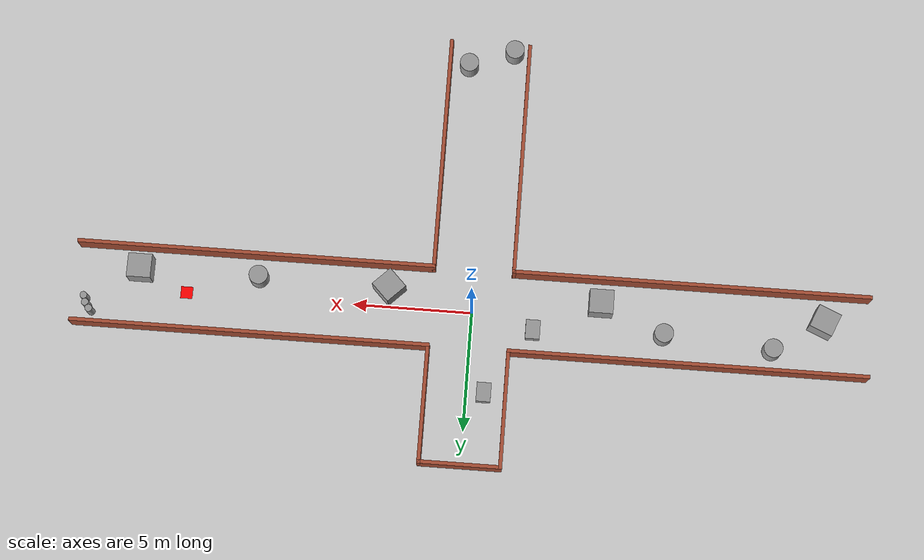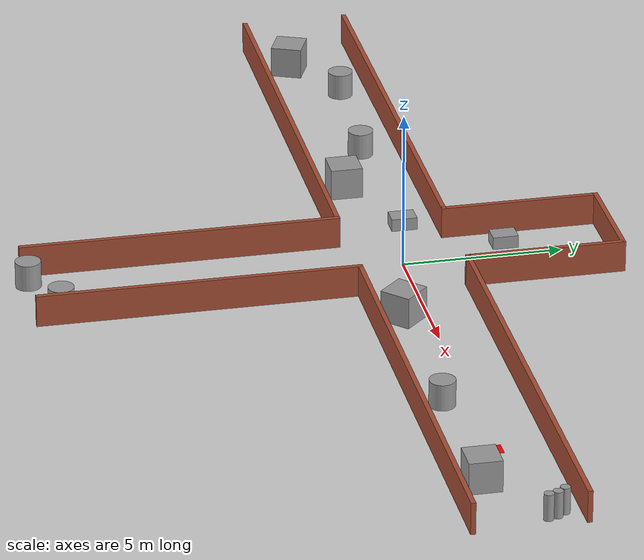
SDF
<sdf version="1.6">
 <world name="default">
  <light name="sun" type="directional">
   <pose>0 0 10 0 -0 0</pose>
   <diffuse>0.8 0.8 0.8 1</diffuse>
   <specular>0.2 0.2 0.2 1</specular>
   <attenuation>
    <range>1000</range>
    <constant>0.9</constant>
    <linear>0.01</linear>
    <quadratic>0.001</quadratic>
   </attenuation>
   <direction>-0.5 0.1 -0.9</direction>
  </light>
  <model name="ground_plane">
   <static>1</static>
   <link name="link">
    <collision name="collision">
     <geometry><plane><normal>0 0 1</normal><size>100 100</size></plane></geometry>
     <surface><friction><ode><mu>100</mu><mu2>50</mu2></ode></friction></surface>
    </collision>
    <visual name="visual">
     <cast_shadows>0</cast_shadows>
     <geometry><plane><normal>0 0 1</normal><size>100 100</size></plane></geometry>
     <material>
      <script><uri>file://media/materials/scripts/gazebo.material</uri><name>Gazebo/Grey</name></script>
     </material>
    </visual>
   </link>
  </model>
  <gravity>0 0 -9.8</gravity>
  <magnetic_field>6e-06 2.3e-05 -4.2e-05</magnetic_field>
  <atmosphere type="adiabatic"/>
  <physics name="default_physics" default="0" type="ode">
   <max_step_size>0.001</max_step_size>
   <real_time_factor>1</real_time_factor>
   <real_time_update_rate>1000</real_time_update_rate>
  </physics>
  <scene><ambient>0.4 0.4 0.4 1</ambient><background>0.7 0.7 0.7 1</background><shadows>1</shadows></scene>
  <spherical_coordinates>
   <surface_model>EARTH_WGS84</surface_model>
   <latitude_deg>0</latitude_deg>
   <longitude_deg>0</longitude_deg>
   <elevation>0</elevation>
   <heading_deg>0</heading_deg>
  </spherical_coordinates>
  <model name="bricks_3.5m_corridor">
   <pose>0.03201 -2.531 -0.007195 0 -0 0</pose>
   <link name="Wall_0">
    <collision name="Wall_0_Collision">
     <geometry><box><size>15 0.15 1</size></box></geometry>
     <pose>0 0 0.5 0 -0 0</pose>
    </collision>
    <visual name="Wall_0_Visual">
     <pose>0 0 0.5 0 -0 0</pose>
     <geometry><box><size>15 0.15 1</size></box></geometry>
     <material>
      <script><uri>file://media/materials/scripts/gazebo.material</uri><name>Gazebo/Bricks</name></script>
      <ambient>1 1 1 1</ambient>
     </material>
     <meta><layer>0</layer></meta>
    </visual>
    <pose>-9.1 4.175 0 0 -0 3.14159</pose>
   </link>
   <link name="Wall_11">
    <collision name="Wall_11_Collision">
     <geometry><box><size>3.5 0.15 1</size></box></geometry>
     <pose>0 0 0.5 0 -0 0</pose>
    </collision>
    <visual name="Wall_11_Visual">
     <pose>0 0 0.5 0 -0 0</pose>
     <geometry><box><size>3.5 0.15 1</size></box></geometry>
     <material>
      <script><uri>file://media/materials/scripts/gazebo.material</uri><name>Gazebo/Bricks</name></script>
      <ambient>1 1 1 1</ambient>
     </material>
     <meta><layer>0</layer></meta>
    </visual>
    <pose>1e-06 9.025 0 0 -0 0</pose>
   </link>
   <link name="Wall_13">
    <collision name="Wall_13_Collision">
     <geometry><box><size>5 0.15 1</size></box></geometry>
     <pose>0 0 0.5 0 -0 0</pose>
    </collision>
    <visual name="Wall_13_Visual">
     <pose>0 0 0.5 0 -0 0</pose>
     <geometry><box><size>5 0.15 1</size></box></geometry>
     <material>
      <script><uri>file://media/materials/scripts/gazebo.material</uri><name>Gazebo/Bricks</name></script>
      <ambient>1 1 1 1</ambient>
     </material>
     <meta><layer>0</layer></meta>
    </visual>
    <pose>1.675 6.6 0 0 -0 -1.5708</pose>
   </link>
   <link name="Wall_14">
    <collision name="Wall_14_Collision">
     <geometry><box><size>15 0.15 1</size></box></geometry>
     <pose>0 0 0.5 0 -0 0</pose>
    </collision>
    <visual name="Wall_14_Visual">
     <pose>0 0 0.5 0 -0 0</pose>
     <geometry><box><size>15 0.15 1</size></box></geometry>
     <material>
      <script><uri>file://media/materials/scripts/gazebo.material</uri><name>Gazebo/Bricks</name></script>
      <ambient>1 1 1 1</ambient>
     </material>
     <meta><layer>0</layer></meta>
    </visual>
    <pose>9.1 4.175 0 0 -0 0</pose>
   </link>
   <link name="Wall_18">
    <collision name="Wall_18_Collision">
     <geometry><box><size>10 0.15 1</size></box></geometry>
     <pose>0 0 0.5 0 -0 0</pose>
    </collision>
    <visual name="Wall_18_Visual">
     <pose>0 0 0.5 0 -0 0</pose>
     <geometry><box><size>10 0.15 1</size></box></geometry>
     <material>
      <script><uri>file://media/materials/scripts/gazebo.material</uri><name>Gazebo/Bricks</name></script>
      <ambient>1 1 1 1</ambient>
     </material>
     <meta><layer>0</layer></meta>
    </visual>
    <pose>1.675 -4.1 0 0 -0 1.5708</pose>
   </link>
   <link name="Wall_19">
    <collision name="Wall_19_Collision">
     <geometry><box><size>15 0.15 1</size></box></geometry>
     <pose>0 0 0.5 0 -0 0</pose>
    </collision>
    <visual name="Wall_19_Visual">
     <pose>0 0 0.5 0 -0 0</pose>
     <geometry><box><size>15 0.15 1</size></box></geometry>
     <material>
      <script><uri>file://media/materials/scripts/gazebo.material</uri><name>Gazebo/Bricks</name></script>
      <ambient>1 1 1 1</ambient>
     </material>
     <meta><layer>0</layer></meta>
    </visual>
    <pose>9.1 0.825 0 0 -0 0</pose>
   </link>
   <link name="Wall_2">
    <collision name="Wall_2_Collision">
     <geometry><box><size>5 0.15 1</size></box></geometry>
     <pose>0 0 0.5 0 -0 0</pose>
    </collision>
    <visual name="Wall_2_Visual">
     <pose>0 0 0.5 0 -0 0</pose>
     <geometry><box><size>5 0.15 1</size></box></geometry>
     <material>
      <script><uri>file://media/materials/scripts/gazebo.material</uri><name>Gazebo/Bricks</name></script>
      <ambient>1 1 1 1</ambient>
     </material>
     <meta><layer>0</layer></meta>
    </visual>
    <pose>-1.675 6.6 0 0 -0 1.5708</pose>
   </link>
   <link name="Wall_6">
    <collision name="Wall_6_Collision">
     <geometry><box><size>15 0.15 1</size></box></geometry>
     <pose>0 0 0.5 0 -0 0</pose>
    </collision>
    <visual name="Wall_6_Visual">
     <pose>0 0 0.5 0 -0 0</pose>
     <geometry><box><size>15 0.15 1</size></box></geometry>
     <material>
      <script><uri>file://media/materials/scripts/gazebo.material</uri><name>Gazebo/Bricks</name></script>
      <ambient>1 1 1 1</ambient>
     </material>
     <meta><layer>0</layer></meta>
    </visual>
    <pose>-9.1 0.825 0 0 -0 0</pose>
   </link>
   <link name="Wall_7">
    <collision name="Wall_7_Collision">
     <geometry><box><size>10 0.15 1</size></box></geometry>
     <pose>0 0 0.5 0 -0 0</pose>
    </collision>
    <visual name="Wall_7_Visual">
     <pose>0 0 0.5 0 -0 0</pose>
     <geometry><box><size>10 0.15 1</size></box></geometry>
     <material>
      <script><uri>file://media/materials/scripts/gazebo.material</uri><name>Gazebo/Bricks</name></script>
      <ambient>1 1 1 1</ambient>
     </material>
     <meta><layer>0</layer></meta>
    </visual>
    <pose>-1.675 -4.1 0 0 -0 -1.5708</pose>
   </link>
   <static>1</static>
  </model>
  <model name="box_1_left">
   <link name="link_0">
    <inertial>
     <mass>1</mass>
     <inertia>
      <ixx>0.166667</ixx>
      <ixy>0</ixy>
      <ixz>0</ixz>
      <iyy>0.166667</iyy>
      <iyz>0</iyz>
      <izz>0.166667</izz>
     </inertia>
     <pose>0 0 0 0 -0 0.4</pose>
    </inertial>
    <pose>0 0 0.5 0 -0 0.38</pose>
    <visual name="visual">
     <pose>0 0 0 0 -0 0.4</pose>
     <geometry><box><size>1 1 1</size></box></geometry>
     <material>
      <lighting>1</lighting>
      <script><uri>file://media/materials/scripts/gazebo.material</uri><name>Gazebo/Grey</name></script>
      <shader type="pixel"><normal_map>__default__</normal_map></shader>
      <ambient>0.3 0.3 0.3 1</ambient>
      <diffuse>0.7 0.7 0.7 1</diffuse>
      <specular>0.01 0.01 0.01 1</specular>
      <emissive>0 0 0 1</emissive>
     </material>
    </visual>
    <collision name="collision">
     <geometry><box><size>1 1 1</size></box></geometry>
     <surface>
      <friction>
       <ode><mu>1</mu><mu2>1</mu2><fdir1>0 0 0</fdir1><slip1>0</slip1><slip2>0</slip2></ode>
       <torsional>
        <coefficient>1</coefficient>
        <patch_radius>0</patch_radius>
        <surface_radius>0</surface_radius>
        <use_patch_radius>1</use_patch_radius>
        <ode><slip>0</slip></ode>
       </torsional>
      </friction>
      <bounce><restitution_coefficient>0</restitution_coefficient><threshold>1e+06</threshold></bounce>
      <contact>
       <collide_without_contact>0</collide_without_contact>
       <collide_without_contact_bitmask>1</collide_without_contact_bitmask>
       <collide_bitmask>1</collide_bitmask>
       <ode>
        <soft_cfm>0</soft_cfm>
        <soft_erp>0.2</soft_erp>
        <kp>1e+13</kp>
        <kd>1</kd>
        <max_vel>0.01</max_vel>
        <min_depth>0</min_depth>
       </ode>
       <bullet>
        <split_impulse>1</split_impulse>
        <split_impulse_penetration_threshold>-0.01</split_impulse_penetration_threshold>
        <soft_cfm>0</soft_cfm>
        <soft_erp>0.2</soft_erp>
        <kp>1e+13</kp>
        <kd>1</kd>
       </bullet>
      </contact>
     </surface>
    </collision>
   </link>
   <static>0</static>
   <pose>3.50572 -0.761872 -0 0 -0 0.000127</pose>
  </model>
  <model name="box_1_length">
   <link name="link_0">
    <inertial>
     <mass>1</mass>
     <inertia>
      <ixx>0.166667</ixx>
      <ixy>0</ixy>
      <ixz>0</ixz>
      <iyy>0.166667</iyy>
      <iyz>0</iyz>
      <izz>0.166667</izz>
     </inertia>
    </inertial>
    <pose>0 0 0.5 0 -0 1.57</pose>
    <visual name="visual">
     <pose>0 0 0 0 -0 1.57</pose>
     <geometry><box><size>1 1 1</size></box></geometry>
     <material>
      <lighting>1</lighting>
      <script><uri>file://media/materials/scripts/gazebo.material</uri><name>Gazebo/Grey</name></script>
      <shader type="pixel"><normal_map>__default__</normal_map></shader>
      <ambient>0.3 0.3 0.3 1</ambient>
      <diffuse>0.7 0.7 0.7 1</diffuse>
      <specular>0.01 0.01 0.01 1</specular>
      <emissive>0 0 0 1</emissive>
     </material>
    </visual>
    <collision name="collision">
     <geometry><box><size>1 1 1</size></box></geometry>
     <surface>
      <friction>
       <ode><mu>1</mu><mu2>1</mu2><fdir1>0 0 0</fdir1><slip1>0</slip1><slip2>0</slip2></ode>
       <torsional>
        <coefficient>1</coefficient>
        <patch_radius>0</patch_radius>
        <surface_radius>0</surface_radius>
        <use_patch_radius>1</use_patch_radius>
        <ode><slip>0</slip></ode>
       </torsional>
      </friction>
      <bounce><restitution_coefficient>0</restitution_coefficient><threshold>1e+06</threshold></bounce>
      <contact>
       <collide_without_contact>0</collide_without_contact>
       <collide_without_contact_bitmask>1</collide_without_contact_bitmask>
       <collide_bitmask>1</collide_bitmask>
       <ode>
        <soft_cfm>0</soft_cfm>
        <soft_erp>0.2</soft_erp>
        <kp>1e+13</kp>
        <kd>1</kd>
        <max_vel>0.01</max_vel>
        <min_depth>0</min_depth>
       </ode>
       <bullet>
        <split_impulse>1</split_impulse>
        <split_impulse_penetration_threshold>-0.01</split_impulse_penetration_threshold>
        <soft_cfm>0</soft_cfm>
        <soft_erp>0.2</soft_erp>
        <kp>1e+13</kp>
        <kd>1</kd>
       </bullet>
      </contact>
     </surface>
    </collision>
   </link>
   <static>0</static>
   <pose>13.9514 -0.824505 -5e-06 1e-05 -0 0</pose>
  </model>
  <model name="cylinder_1">
   <link name="link">
    <inertial>
     <mass>10000</mass>
     <inertia><ixx>3389.58</ixx><ixy>0</ixy><ixz>0</ixz><iyy>3389.58</iyy><iyz>0</iyz><izz>112.5</izz></inertia>
    </inertial>
    <visual name="visual">
     <geometry><cylinder><radius>0.15</radius><length>1</length></cylinder></geometry>
     <material>
      <script><name>Gazebo/Grey</name><uri>file://media/materials/scripts/gazebo.material</uri></script>
      <shader type="pixel"><normal_map>__default__</normal_map></shader>
      <ambient>0.3 0.3 0.3 1</ambient>
      <diffuse>0.7 0.7 0.7 1</diffuse>
      <specular>0.01 0.01 0.01 1</specular>
      <emissive>0 0 0 1</emissive>
     </material>
     <pose>0 0 0.3 0 -0 0</pose>
    </visual>
    <collision name="collision">
     <pose>0 0 0.3 0 -0 0</pose>
     <geometry><cylinder><radius>0.15</radius><length>8</length></cylinder></geometry>
     <surface>
      <friction>
       <ode><mu>1</mu><mu2>1</mu2><fdir1>0 0 0</fdir1><slip1>0</slip1><slip2>0</slip2></ode>
       <torsional>
        <coefficient>1</coefficient>
        <patch_radius>0</patch_radius>
        <surface_radius>0</surface_radius>
        <use_patch_radius>1</use_patch_radius>
        <ode><slip>0</slip></ode>
       </torsional>
      </friction>
      <bounce><restitution_coefficient>0</restitution_coefficient><threshold>1e+06</threshold></bounce>
      <contact>
       <collide_without_contact>0</collide_without_contact>
       <collide_without_contact_bitmask>1</collide_without_contact_bitmask>
       <collide_bitmask>1</collide_bitmask>
       <ode>
        <soft_cfm>0</soft_cfm>
        <soft_erp>0.2</soft_erp>
        <kp>1e+13</kp>
        <kd>1</kd>
        <max_vel>0.01</max_vel>
        <min_depth>0</min_depth>
       </ode>
       <bullet>
        <split_impulse>1</split_impulse>
        <split_impulse_penetration_threshold>-0.01</split_impulse_penetration_threshold>
        <soft_cfm>0</soft_cfm>
        <soft_erp>0.2</soft_erp>
        <kp>1e+13</kp>
        <kd>1</kd>
       </bullet>
      </contact>
     </surface>
    </collision>
   </link>
   <static>1</static>
   <pose>16.1631 0.572285 0 0 -0 0</pose>
  </model>
  <model name="cylinder_1_0">
   <link name="link">
    <inertial>
     <mass>10000</mass>
     <inertia><ixx>3389.58</ixx><ixy>0</ixy><ixz>0</ixz><iyy>3389.58</iyy><iyz>0</iyz><izz>112.5</izz></inertia>
    </inertial>
    <visual name="visual">
     <geometry><cylinder><radius>0.15</radius><length>1</length></cylinder></geometry>
     <material>
      <script><name>Gazebo/Grey</name><uri>file://media/materials/scripts/gazebo.material</uri></script>
      <shader type="pixel"><normal_map>__default__</normal_map></shader>
      <ambient>0.3 0.3 0.3 1</ambient>
      <diffuse>0.7 0.7 0.7 1</diffuse>
      <specular>0.01 0.01 0.01 1</specular>
      <emissive>0 0 0 1</emissive>
     </material>
     <pose>0 0 0.3 0 -0 0</pose>
    </visual>
    <collision name="collision">
     <pose>0 0 0.3 0 -0 0</pose>
     <geometry><cylinder><radius>0.15</radius><length>8</length></cylinder></geometry>
     <surface>
      <friction>
       <ode><mu>1</mu><mu2>1</mu2><fdir1>0 0 0</fdir1><slip1>0</slip1><slip2>0</slip2></ode>
       <torsional>
        <coefficient>1</coefficient>
        <patch_radius>0</patch_radius>
        <surface_radius>0</surface_radius>
        <use_patch_radius>1</use_patch_radius>
        <ode><slip>0</slip></ode>
       </torsional>
      </friction>
      <bounce><restitution_coefficient>0</restitution_coefficient><threshold>1e+06</threshold></bounce>
      <contact>
       <collide_without_contact>0</collide_without_contact>
       <collide_without_contact_bitmask>1</collide_without_contact_bitmask>
       <collide_bitmask>1</collide_bitmask>
       <ode>
        <soft_cfm>0</soft_cfm>
        <soft_erp>0.2</soft_erp>
        <kp>1e+13</kp>
        <kd>1</kd>
        <max_vel>0.01</max_vel>
        <min_depth>0</min_depth>
       </ode>
       <bullet>
        <split_impulse>1</split_impulse>
        <split_impulse_penetration_threshold>-0.01</split_impulse_penetration_threshold>
        <soft_cfm>0</soft_cfm>
        <soft_erp>0.2</soft_erp>
        <kp>1e+13</kp>
        <kd>1</kd>
       </bullet>
      </contact>
     </surface>
    </collision>
   </link>
   <static>1</static>
   <pose>16.0739 0.861548 0 0 -0 0</pose>
  </model>
  <model name="cylinder_1_1">
   <link name="link">
    <inertial>
     <mass>10000</mass>
     <inertia><ixx>3389.58</ixx><ixy>0</ixy><ixz>0</ixz><iyy>3389.58</iyy><iyz>0</iyz><izz>112.5</izz></inertia>
    </inertial>
    <visual name="visual">
     <geometry><cylinder><radius>0.15</radius><length>1</length></cylinder></geometry>
     <material>
      <script><name>Gazebo/Grey</name><uri>file://media/materials/scripts/gazebo.material</uri></script>
      <shader type="pixel"><normal_map>__default__</normal_map></shader>
      <ambient>0.3 0.3 0.3 1</ambient>
      <diffuse>0.7 0.7 0.7 1</diffuse>
      <specular>0.01 0.01 0.01 1</specular>
      <emissive>0 0 0 1</emissive>
     </material>
     <pose>0 0 0.3 0 -0 0</pose>
    </visual>
    <collision name="collision">
     <pose>0 0 0.3 0 -0 0</pose>
     <geometry><cylinder><radius>0.15</radius><length>8</length></cylinder></geometry>
     <surface>
      <friction>
       <ode><mu>1</mu><mu2>1</mu2><fdir1>0 0 0</fdir1><slip1>0</slip1><slip2>0</slip2></ode>
       <torsional>
        <coefficient>1</coefficient>
        <patch_radius>0</patch_radius>
        <surface_radius>0</surface_radius>
        <use_patch_radius>1</use_patch_radius>
        <ode><slip>0</slip></ode>
       </torsional>
      </friction>
      <bounce><restitution_coefficient>0</restitution_coefficient><threshold>1e+06</threshold></bounce>
      <contact>
       <collide_without_contact>0</collide_without_contact>
       <collide_without_contact_bitmask>1</collide_without_contact_bitmask>
       <collide_bitmask>1</collide_bitmask>
       <ode>
        <soft_cfm>0</soft_cfm>
        <soft_erp>0.2</soft_erp>
        <kp>1e+13</kp>
        <kd>1</kd>
        <max_vel>0.01</max_vel>
        <min_depth>0</min_depth>
       </ode>
       <bullet>
        <split_impulse>1</split_impulse>
        <split_impulse_penetration_threshold>-0.01</split_impulse_penetration_threshold>
        <soft_cfm>0</soft_cfm>
        <soft_erp>0.2</soft_erp>
        <kp>1e+13</kp>
        <kd>1</kd>
       </bullet>
      </contact>
     </surface>
    </collision>
   </link>
   <static>1</static>
   <pose>15.894 1.10977 0 0 -0 0</pose>
  </model>
  <model name="box_1_length_0">
   <link name="link_0">
    <inertial>
     <mass>1</mass>
     <inertia>
      <ixx>0.166667</ixx>
      <ixy>0</ixy>
      <ixz>0</ixz>
      <iyy>0.166667</iyy>
      <iyz>0</iyz>
      <izz>0.166667</izz>
     </inertia>
    </inertial>
    <pose>0 0 0.5 0 -0 1.57</pose>
    <visual name="visual">
     <pose>0 0 0 0 -0 1.57</pose>
     <geometry><box><size>1 1 1</size></box></geometry>
     <material>
      <lighting>1</lighting>
      <script><uri>file://media/materials/scripts/gazebo.material</uri><name>Gazebo/Grey</name></script>
      <shader type="pixel"><normal_map>__default__</normal_map></shader>
      <ambient>0.3 0.3 0.3 1</ambient>
      <diffuse>0.7 0.7 0.7 1</diffuse>
      <specular>0.01 0.01 0.01 1</specular>
      <emissive>0 0 0 1</emissive>
     </material>
    </visual>
    <collision name="collision">
     <geometry><box><size>1 1 1</size></box></geometry>
     <surface>
      <friction>
       <ode><mu>1</mu><mu2>1</mu2><fdir1>0 0 0</fdir1><slip1>0</slip1><slip2>0</slip2></ode>
       <torsional>
        <coefficient>1</coefficient>
        <patch_radius>0</patch_radius>
        <surface_radius>0</surface_radius>
        <use_patch_radius>1</use_patch_radius>
        <ode><slip>0</slip></ode>
       </torsional>
      </friction>
      <bounce><restitution_coefficient>0</restitution_coefficient><threshold>1e+06</threshold></bounce>
      <contact>
       <collide_without_contact>0</collide_without_contact>
       <collide_without_contact_bitmask>1</collide_without_contact_bitmask>
       <collide_bitmask>1</collide_bitmask>
       <ode>
        <soft_cfm>0</soft_cfm>
        <soft_erp>0.2</soft_erp>
        <kp>1e+13</kp>
        <kd>1</kd>
        <max_vel>0.01</max_vel>
        <min_depth>0</min_depth>
       </ode>
       <bullet>
        <split_impulse>1</split_impulse>
        <split_impulse_penetration_threshold>-0.01</split_impulse_penetration_threshold>
        <soft_cfm>0</soft_cfm>
        <soft_erp>0.2</soft_erp>
        <kp>1e+13</kp>
        <kd>1</kd>
       </bullet>
      </contact>
     </surface>
    </collision>
   </link>
   <static>0</static>
   <pose>-5.35731 -0.719621 -5e-06 1e-05 -0 0</pose>
  </model>
  <model name="cylinder_2_1">
   <link name="link">
    <inertial>
     <mass>10000</mass>
     <inertia><ixx>3389.58</ixx><ixy>0</ixy><ixz>0</ixz><iyy>3389.58</iyy><iyz>0</iyz><izz>112.5</izz></inertia>
    </inertial>
    <visual name="visual">
     <geometry><cylinder><radius>0.4</radius><length>1</length></cylinder></geometry>
     <material>
      <script><name>Gazebo/Grey</name><uri>file://media/materials/scripts/gazebo.material</uri></script>
      <shader type="pixel"><normal_map>__default__</normal_map></shader>
      <ambient>0.3 0.3 0.3 1</ambient>
      <diffuse>0.7 0.7 0.7 1</diffuse>
      <specular>0.01 0.01 0.01 1</specular>
      <emissive>0 0 0 1</emissive>
     </material>
     <pose>0 0 0.3 0 -0 0</pose>
    </visual>
    <collision name="collision">
     <pose>0 0 0.3 0 -0 0</pose>
     <geometry><cylinder><radius>0.15</radius><length>8</length></cylinder></geometry>
     <surface>
      <friction>
       <ode><mu>1</mu><mu2>1</mu2><fdir1>0 0 0</fdir1><slip1>0</slip1><slip2>0</slip2></ode>
       <torsional>
        <coefficient>1</coefficient>
        <patch_radius>0</patch_radius>
        <surface_radius>0</surface_radius>
        <use_patch_radius>1</use_patch_radius>
        <ode><slip>0</slip></ode>
       </torsional>
      </friction>
      <bounce><restitution_coefficient>0</restitution_coefficient><threshold>1e+06</threshold></bounce>
      <contact>
       <collide_without_contact>0</collide_without_contact>
       <collide_without_contact_bitmask>1</collide_without_contact_bitmask>
       <collide_bitmask>1</collide_bitmask>
       <ode>
        <soft_cfm>0</soft_cfm>
        <soft_erp>0.2</soft_erp>
        <kp>1e+13</kp>
        <kd>1</kd>
        <max_vel>0.01</max_vel>
        <min_depth>0</min_depth>
       </ode>
       <bullet>
        <split_impulse>1</split_impulse>
        <split_impulse_penetration_threshold>-0.01</split_impulse_penetration_threshold>
        <soft_cfm>0</soft_cfm>
        <soft_erp>0.2</soft_erp>
        <kp>1e+13</kp>
        <kd>1</kd>
       </bullet>
      </contact>
     </surface>
    </collision>
   </link>
   <static>1</static>
   <pose>-12.5771 0.694532 0 0 -0 0</pose>
  </model>
  <model name="box_1_right">
   <link name="link_0">
    <inertial>
     <mass>1</mass>
     <inertia>
      <ixx>0.166667</ixx>
      <ixy>0</ixy>
      <ixz>0</ixz>
      <iyy>0.166667</iyy>
      <iyz>0</iyz>
      <izz>0.166667</izz>
     </inertia>
    </inertial>
    <pose>0 0 0.5 0 -0 0</pose>
    <visual name="visual">
     <pose>0 0 0 0 -0 -0.4</pose>
     <geometry><box><size>1 1 1</size></box></geometry>
     <material>
      <lighting>1</lighting>
      <script><uri>file://media/materials/scripts/gazebo.material</uri><name>Gazebo/Grey</name></script>
      <shader type="pixel"><normal_map>__default__</normal_map></shader>
      <ambient>0.3 0.3 0.3 1</ambient>
      <diffuse>0.7 0.7 0.7 1</diffuse>
      <specular>0.01 0.01 0.01 1</specular>
      <emissive>0 0 0 1</emissive>
     </material>
    </visual>
    <collision name="collision">
     <geometry><box><size>1 1 1</size></box></geometry>
     <surface>
      <friction>
       <ode><mu>1</mu><mu2>1</mu2><fdir1>0 0 0</fdir1><slip1>0</slip1><slip2>0</slip2></ode>
       <torsional>
        <coefficient>1</coefficient>
        <patch_radius>0</patch_radius>
        <surface_radius>0</surface_radius>
        <use_patch_radius>1</use_patch_radius>
        <ode><slip>0</slip></ode>
       </torsional>
      </friction>
      <bounce><restitution_coefficient>0</restitution_coefficient><threshold>1e+06</threshold></bounce>
      <contact>
       <collide_without_contact>0</collide_without_contact>
       <collide_without_contact_bitmask>1</collide_without_contact_bitmask>
       <collide_bitmask>1</collide_bitmask>
       <ode>
        <soft_cfm>0</soft_cfm>
        <soft_erp>0.2</soft_erp>
        <kp>1e+13</kp>
        <kd>1</kd>
        <max_vel>0.01</max_vel>
        <min_depth>0</min_depth>
       </ode>
       <bullet>
        <split_impulse>1</split_impulse>
        <split_impulse_penetration_threshold>-0.01</split_impulse_penetration_threshold>
        <soft_cfm>0</soft_cfm>
        <soft_erp>0.2</soft_erp>
        <kp>1e+13</kp>
        <kd>1</kd>
       </bullet>
      </contact>
     </surface>
    </collision>
   </link>
   <static>0</static>
   <pose>-14.6592 -0.596816 -5e-06 0 1e-05 0</pose>
  </model>
  <model name="cylinder_2_2">
   <link name="link">
    <inertial>
     <mass>10000</mass>
     <inertia><ixx>3389.58</ixx><ixy>0</ixy><ixz>0</ixz><iyy>3389.58</iyy><iyz>0</iyz><izz>112.5</izz></inertia>
    </inertial>
    <visual name="visual">
     <geometry><cylinder><radius>0.4</radius><length>1</length></cylinder></geometry>
     <material>
      <script><name>Gazebo/Grey</name><uri>file://media/materials/scripts/gazebo.material</uri></script>
      <shader type="pixel"><normal_map>__default__</normal_map></shader>
      <ambient>0.3 0.3 0.3 1</ambient>
      <diffuse>0.7 0.7 0.7 1</diffuse>
      <specular>0.01 0.01 0.01 1</specular>
      <emissive>0 0 0 1</emissive>
     </material>
     <pose>0 0 0.3 0 -0 0</pose>
    </visual>
    <collision name="collision">
     <pose>0 0 0.3 0 -0 0</pose>
     <geometry><cylinder><radius>0.15</radius><length>8</length></cylinder></geometry>
     <surface>
      <friction>
       <ode><mu>1</mu><mu2>1</mu2><fdir1>0 0 0</fdir1><slip1>0</slip1><slip2>0</slip2></ode>
       <torsional>
        <coefficient>1</coefficient>
        <patch_radius>0</patch_radius>
        <surface_radius>0</surface_radius>
        <use_patch_radius>1</use_patch_radius>
        <ode><slip>0</slip></ode>
       </torsional>
      </friction>
      <bounce><restitution_coefficient>0</restitution_coefficient><threshold>1e+06</threshold></bounce>
      <contact>
       <collide_without_contact>0</collide_without_contact>
       <collide_without_contact_bitmask>1</collide_without_contact_bitmask>
       <collide_bitmask>1</collide_bitmask>
       <ode>
        <soft_cfm>0</soft_cfm>
        <soft_erp>0.2</soft_erp>
        <kp>1e+13</kp>
        <kd>1</kd>
        <max_vel>0.01</max_vel>
        <min_depth>0</min_depth>
       </ode>
       <bullet>
        <split_impulse>1</split_impulse>
        <split_impulse_penetration_threshold>-0.01</split_impulse_penetration_threshold>
        <soft_cfm>0</soft_cfm>
        <soft_erp>0.2</soft_erp>
        <kp>1e+13</kp>
        <kd>1</kd>
       </bullet>
      </contact>
     </surface>
    </collision>
   </link>
   <static>1</static>
   <pose>0.889172 -10.7357 0 0 -0 0</pose>
  </model>
  <model name="cylinder_2_4">
   <link name="link">
    <inertial>
     <mass>10000</mass>
     <inertia><ixx>3389.58</ixx><ixy>0</ixy><ixz>0</ixz><iyy>3389.58</iyy><iyz>0</iyz><izz>112.5</izz></inertia>
    </inertial>
    <visual name="visual">
     <geometry><cylinder><radius>0.4</radius><length>1</length></cylinder></geometry>
     <material>
      <script><name>Gazebo/Grey</name><uri>file://media/materials/scripts/gazebo.material</uri></script>
      <shader type="pixel"><normal_map>__default__</normal_map></shader>
      <ambient>0.3 0.3 0.3 1</ambient>
      <diffuse>0.7 0.7 0.7 1</diffuse>
      <specular>0.01 0.01 0.01 1</specular>
      <emissive>0 0 0 1</emissive>
     </material>
     <pose>0 0 0.3 0 -0 0</pose>
    </visual>
    <collision name="collision">
     <pose>0 0 0.3 0 -0 0</pose>
     <geometry><cylinder><radius>0.15</radius><length>8</length></cylinder></geometry>
     <surface>
      <friction>
       <ode><mu>1</mu><mu2>1</mu2><fdir1>0 0 0</fdir1><slip1>0</slip1><slip2>0</slip2></ode>
       <torsional>
        <coefficient>1</coefficient>
        <patch_radius>0</patch_radius>
        <surface_radius>0</surface_radius>
        <use_patch_radius>1</use_patch_radius>
        <ode><slip>0</slip></ode>
       </torsional>
      </friction>
      <bounce><restitution_coefficient>0</restitution_coefficient><threshold>1e+06</threshold></bounce>
      <contact>
       <collide_without_contact>0</collide_without_contact>
       <collide_without_contact_bitmask>1</collide_without_contact_bitmask>
       <collide_bitmask>1</collide_bitmask>
       <ode>
        <soft_cfm>0</soft_cfm>
        <soft_erp>0.2</soft_erp>
        <kp>1e+13</kp>
        <kd>1</kd>
        <max_vel>0.01</max_vel>
        <min_depth>0</min_depth>
       </ode>
       <bullet>
        <split_impulse>1</split_impulse>
        <split_impulse_penetration_threshold>-0.01</split_impulse_penetration_threshold>
        <soft_cfm>0</soft_cfm>
        <soft_erp>0.2</soft_erp>
        <kp>1e+13</kp>
        <kd>1</kd>
       </bullet>
      </contact>
     </surface>
    </collision>
   </link>
   <static>1</static>
   <pose>-1.01269 -11.4478 0 0 -0 0</pose>
  </model>
  <model name="box_2_length">
   <link name="link_3">
    <inertial>
     <mass>0.20289</mass>
     <inertia>
      <ixx>0.00986764</ixx>
      <ixy>0</ixy>
      <ixz>0</ixz>
      <iyy>0.018296</iyy>
      <iyz>0</iyz>
      <izz>0.0253866</izz>
     </inertia>
    </inertial>
    <pose>0 0 0.2 0 -0 1.57</pose>
    <visual name="visual">
     <geometry><box><size>0.8 0.6 0.4</size></box></geometry>
     <material>
      <lighting>1</lighting>
      <script><uri>file://media/materials/scripts/gazebo.material</uri><name>Gazebo/Grey</name></script>
      <shader type="pixel"><normal_map>__default__</normal_map></shader>
     </material>
    </visual>
    <collision name="collision">
     <geometry><box><size>0.8 0.6 0.4</size></box></geometry>
     <surface>
      <friction>
       <ode><mu>1</mu><mu2>1</mu2><fdir1>0 0 0</fdir1><slip1>0</slip1><slip2>0</slip2></ode>
       <torsional>
        <coefficient>1</coefficient>
        <patch_radius>0</patch_radius>
        <surface_radius>0</surface_radius>
        <use_patch_radius>1</use_patch_radius>
        <ode><slip>0</slip></ode>
       </torsional>
      </friction>
      <bounce><restitution_coefficient>0</restitution_coefficient><threshold>1e+06</threshold></bounce>
      <contact>
       <collide_without_contact>0</collide_without_contact>
       <collide_without_contact_bitmask>1</collide_without_contact_bitmask>
       <collide_bitmask>1</collide_bitmask>
       <ode>
        <soft_cfm>0</soft_cfm>
        <soft_erp>0.2</soft_erp>
        <kp>1e+13</kp>
        <kd>1</kd>
        <max_vel>0.01</max_vel>
        <min_depth>0</min_depth>
       </ode>
       <bullet>
        <split_impulse>1</split_impulse>
        <split_impulse_penetration_threshold>-0.01</split_impulse_penetration_threshold>
        <soft_cfm>0</soft_cfm>
        <soft_erp>0.2</soft_erp>
        <kp>1e+13</kp>
        <kd>1</kd>
       </bullet>
      </contact>
     </surface>
    </collision>
   </link>
   <static>0</static>
   <pose>-2.58987 0.560826 -0 0 -0 0</pose>
  </model>
  <model name="box_2_length_0">
   <link name="link_3">
    <inertial>
     <mass>0.20289</mass>
     <inertia>
      <ixx>0.00986764</ixx>
      <ixy>0</ixy>
      <ixz>0</ixz>
      <iyy>0.018296</iyy>
      <iyz>0</iyz>
      <izz>0.0253866</izz>
     </inertia>
    </inertial>
    <pose>0 0 0.2 0 -0 1.57</pose>
    <visual name="visual">
     <geometry><box><size>0.8 0.6 0.4</size></box></geometry>
     <material>
      <lighting>1</lighting>
      <script><uri>file://media/materials/scripts/gazebo.material</uri><name>Gazebo/Grey</name></script>
      <shader type="pixel"><normal_map>__default__</normal_map></shader>
     </material>
    </visual>
    <collision name="collision">
     <geometry><box><size>0.8 0.6 0.4</size></box></geometry>
     <surface>
      <friction>
       <ode><mu>1</mu><mu2>1</mu2><fdir1>0 0 0</fdir1><slip1>0</slip1><slip2>0</slip2></ode>
       <torsional>
        <coefficient>1</coefficient>
        <patch_radius>0</patch_radius>
        <surface_radius>0</surface_radius>
        <use_patch_radius>1</use_patch_radius>
        <ode><slip>0</slip></ode>
       </torsional>
      </friction>
      <bounce><restitution_coefficient>0</restitution_coefficient><threshold>1e+06</threshold></bounce>
      <contact>
       <collide_without_contact>0</collide_without_contact>
       <collide_without_contact_bitmask>1</collide_without_contact_bitmask>
       <collide_bitmask>1</collide_bitmask>
       <ode>
        <soft_cfm>0</soft_cfm>
        <soft_erp>0.2</soft_erp>
        <kp>1e+13</kp>
        <kd>1</kd>
        <max_vel>0.01</max_vel>
        <min_depth>0</min_depth>
       </ode>
       <bullet>
        <split_impulse>1</split_impulse>
        <split_impulse_penetration_threshold>-0.01</split_impulse_penetration_threshold>
        <soft_cfm>0</soft_cfm>
        <soft_erp>0.2</soft_erp>
        <kp>1e+13</kp>
        <kd>1</kd>
       </bullet>
      </contact>
     </surface>
    </collision>
   </link>
   <static>0</static>
   <pose>-0.739025 3.3458 -0 0 -0 0</pose>
  </model>
  <model name="cylinder_2_0">
   <link name="link">
    <inertial>
     <mass>10000</mass>
     <inertia><ixx>3389.58</ixx><ixy>0</ixy><ixz>0</ixz><iyy>3389.58</iyy><iyz>0</iyz><izz>112.5</izz></inertia>
    </inertial>
    <visual name="visual">
     <geometry><cylinder><radius>0.4</radius><length>1</length></cylinder></geometry>
     <material>
      <script><name>Gazebo/Grey</name><uri>file://media/materials/scripts/gazebo.material</uri></script>
      <shader type="pixel"><normal_map>__default__</normal_map></shader>
      <ambient>0.3 0.3 0.3 1</ambient>
      <diffuse>0.7 0.7 0.7 1</diffuse>
      <specular>0.01 0.01 0.01 1</specular>
      <emissive>0 0 0 1</emissive>
     </material>
     <pose>0 0 0.3 0 -0 0</pose>
    </visual>
    <collision name="collision">
     <pose>0 0 0.3 0 -0 0</pose>
     <geometry><cylinder><radius>0.4</radius><length>8</length></cylinder></geometry>
     <surface>
      <friction>
       <ode><mu>1</mu><mu2>1</mu2><fdir1>0 0 0</fdir1><slip1>0</slip1><slip2>0</slip2></ode>
       <torsional>
        <coefficient>1</coefficient>
        <patch_radius>0</patch_radius>
        <surface_radius>0</surface_radius>
        <use_patch_radius>1</use_patch_radius>
        <ode><slip>0</slip></ode>
       </torsional>
      </friction>
      <bounce><restitution_coefficient>0</restitution_coefficient><threshold>1e+06</threshold></bounce>
      <contact>
       <collide_without_contact>0</collide_without_contact>
       <collide_without_contact_bitmask>1</collide_without_contact_bitmask>
       <collide_bitmask>1</collide_bitmask>
       <ode>
        <soft_cfm>0</soft_cfm>
        <soft_erp>0.2</soft_erp>
        <kp>1e+13</kp>
        <kd>1</kd>
        <max_vel>0.01</max_vel>
        <min_depth>0</min_depth>
       </ode>
       <bullet>
        <split_impulse>1</split_impulse>
        <split_impulse_penetration_threshold>-0.01</split_impulse_penetration_threshold>
        <soft_cfm>0</soft_cfm>
        <soft_erp>0.2</soft_erp>
        <kp>1e+13</kp>
        <kd>1</kd>
       </bullet>
      </contact>
     </surface>
    </collision>
   </link>
   <static>1</static>
   <pose>-8.02731 0.394325 0 0 -0 0</pose>
  </model>
  <model name="goal">
   <link name="goal_box">
    <visual name="goal_box">
     <pose>0 0 0.0005 0 -0 0</pose>
     <geometry><box><size>0.5 0.5 0.001</size></box></geometry>
     <material>
      <script><uri>file://media/materials/scripts/gazebo.material</uri><name>Gazebo/Grey</name></script>
      <ambient>1 0 0 1</ambient>
     </material>
    </visual>
   </link>
   <static>1</static>
   <pose>12 0 0 0 -0 0</pose>
  </model>
  <model name="cylinder_2">
   <link name="link">
    <inertial>
     <mass>10000</mass>
     <inertia><ixx>3389.58</ixx><ixy>0</ixy><ixz>0</ixz><iyy>3389.58</iyy><iyz>0</iyz><izz>112.5</izz></inertia>
    </inertial>
    <visual name="visual">
     <geometry><cylinder><radius>0.4</radius><length>1</length></cylinder></geometry>
     <material>
      <script><name>Gazebo/Grey</name><uri>file://media/materials/scripts/gazebo.material</uri></script>
      <shader type="pixel"><normal_map>__default__</normal_map></shader>
      <ambient>0.3 0.3 0.3 1</ambient>
      <diffuse>0.7 0.7 0.7 1</diffuse>
      <specular>0.01 0.01 0.01 1</specular>
      <emissive>0 0 0 1</emissive>
     </material>
     <pose>0 0 0.3 0 -0 0</pose>
    </visual>
    <collision name="collision">
     <pose>0 0 0.3 0 -0 0</pose>
     <geometry><cylinder><radius>0.4</radius><length>8</length></cylinder></geometry>
     <surface>
      <friction>
       <ode><mu>1</mu><mu2>1</mu2><fdir1>0 0 0</fdir1><slip1>0</slip1><slip2>0</slip2></ode>
       <torsional>
        <coefficient>1</coefficient>
        <patch_radius>0</patch_radius>
        <surface_radius>0</surface_radius>
        <use_patch_radius>1</use_patch_radius>
        <ode><slip>0</slip></ode>
       </torsional>
      </friction>
      <bounce><restitution_coefficient>0</restitution_coefficient><threshold>1e+06</threshold></bounce>
      <contact>
       <collide_without_contact>0</collide_without_contact>
       <collide_without_contact_bitmask>1</collide_without_contact_bitmask>
       <collide_bitmask>1</collide_bitmask>
       <ode>
        <soft_cfm>0</soft_cfm>
        <soft_erp>0.2</soft_erp>
        <kp>1e+13</kp>
        <kd>1</kd>
        <max_vel>0.01</max_vel>
        <min_depth>0</min_depth>
       </ode>
       <bullet>
        <split_impulse>1</split_impulse>
        <split_impulse_penetration_threshold>-0.01</split_impulse_penetration_threshold>
        <soft_cfm>0</soft_cfm>
        <soft_erp>0.2</soft_erp>
        <kp>1e+13</kp>
        <kd>1</kd>
       </bullet>
      </contact>
     </surface>
    </collision>
   </link>
   <static>1</static>
   <pose>8.98933 -0.831655 0 0 -0 0</pose>
  </model>
 </world>
</sdf>
